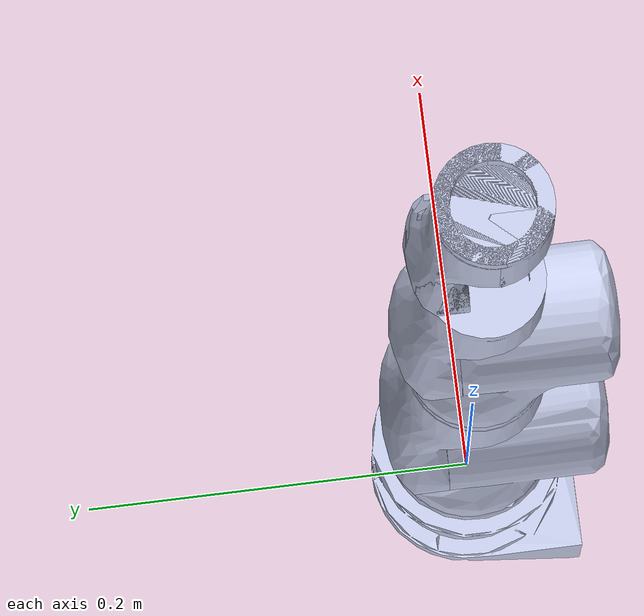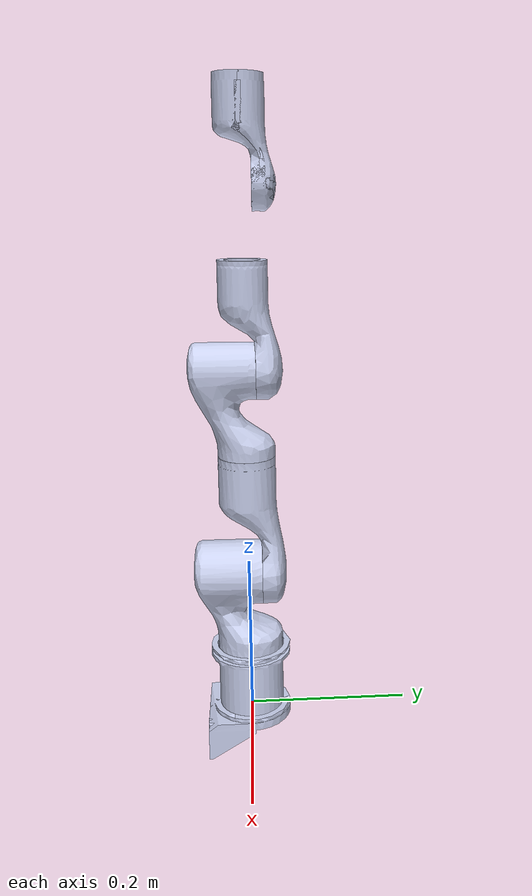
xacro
<?xml version="1.0"?>
<robot name="rm75_b_v_left" xmlns:xacro="http://www.ros.org/wiki/xacro">
  <!-- Define constants -->
  <xacro:property name="mesh_path" value="file://$(find dual_rm_75b_description)/meshes/" />
  <!-- Macro for visual and collision elements -->
  <xacro:macro name="visual_collision" params="mesh">
    <visual>
      <origin xyz="0 0 0" rpy="0 0 0" />
      <geometry>
        <mesh filename="${mesh_path}${mesh}" />
      </geometry>
      <material name="">
        <color rgba="0.79216 0.81961 0.93333 1" />
      </material>
    </visual>
    <collision>
      <origin xyz="0 0 0" rpy="0 0 0" />
      <geometry>
        <mesh filename="${mesh_path}${mesh}" />
      </geometry>
    </collision>
  </xacro:macro>
  <link
    name="l_base_link1">
    <inertial>
      <origin
        xyz="-3.58E-05 -0.0056915 0.024464"
        rpy="0 0 0" />
      <mass
        value="0.23441" />
      <inertia
        ixx="0.00027369"
        ixy="6.5702E-08"
        ixz="2.7812E-09"
        iyy="0.000264"
        iyz="-1.6355E-06"
        izz="0.00036679" />
    </inertial>
    <xacro:visual_collision mesh="l_base_link1.STL" />
  </link>
  <link
    name="l_link1">
    <inertial>
      <origin
        xyz="2.9692E-07 0.025188 -0.021107"
        rpy="0 0 0" />
      <mass
        value="0.59353" />
      <inertia
        ixx="0.0012661"
        ixy="-2.1134E-09"
        ixz="-5.3685E-09"
        iyy="0.00056131"
        iyz="-0.00021118"
        izz="0.0011816" />
    </inertial>
    <xacro:visual_collision mesh="l_link1.STL" />
  </link>
  <link
    name="l_link2">
    <inertial>
      <origin
        xyz="3.7598E-07 0.011077 0.07613"
        rpy="0 0 0" />
      <mass
        value="0.43285" />
      <inertia
        ixx="0.0012584"
        ixy="7.8046E-10"
        ixz="3.3823E-09"
        iyy="0.0012224"
        iyz="0.00027899"
        izz="0.00031747" />
    </inertial>
    <xacro:visual_collision mesh="l_link2.STL" />
  </link>
  <link
    name="l_link3">
    <inertial>
      <origin
        xyz="1.1341E-07 0.027347 -0.023544"
        rpy="0 0 0" />
      <mass
        value="0.43132" />
      <inertia
        ixx="0.00079434"
        ixy="1.4278E-09"
        ixz="2.8253E-09"
        iyy="0.00031506"
        iyz="-0.00014262"
        izz="0.00073038" />
    </inertial>
    <xacro:visual_collision mesh="l_link3.STL" />
  </link>
  <link
    name="l_link4">
    <inertial>
      <origin
        xyz="4.7315E-06 0.010268 0.059592"
        rpy="0 0 0" />
      <mass
        value="0.28963" />
      <inertia
        ixx="0.00063737"
        ixy="-3.5036E-08"
        ixz="6.2577E-08"
        iyy="0.00061418"
        iyz="0.00014461"
        izz="0.00015649" />
    </inertial>
    <xacro:visual_collision mesh="l_link4.STL" />
  </link>
  <link
    name="l_link5">
    <inertial>
      <origin
        xyz="2.93E-07 0.02154 -0.018042"
        rpy="0 0 0" />
      <mass
        value="0.23942" />
      <inertia
        ixx="0.00028595"
        ixy="-1.4023E-09"
        ixz="-2.3584E-09"
        iyy="0.0001199"
        iyz="-4.424E-05"
        izz="0.00026273" />
    </inertial>
    <xacro:visual_collision mesh="l_link5.STL" />
  </link>
  <link
    name="l_link6">
    <inertial>
      <origin
        xyz="4.2445E-06 0.007067 0.059381"
        rpy="0 0 0" />
      <mass
        value="0.21879" />
      <inertia
        ixx="0.00035053"
        ixy="-1.6558E-08"
        ixz="2.8592E-08"
        iyy="0.00033447"
        iyz="7.824E-05"
        izz="0.00010492" />
    </inertial>
    <xacro:visual_collision mesh="l_link6.STL" />
  </link>

  <joint
    name="l_joint1"
    type="revolute">
    <origin
      xyz="0 0 0.187"
      rpy="-1.5708 0 0" />
    <parent
      link="l_base_link1" />
    <child
      link="l_link1" />
    <axis
      xyz="0 -1 0" />
    <limit
      lower="-3.11"
      upper="3.11"
      effort="60"
      velocity="3.14" />
  </joint>
  <joint
    name="l_joint2"
    type="revolute">
    <origin
      xyz="0 0 0"
      rpy="1.5708 0 0" />
    <parent
      link="l_link1" />
    <child
      link="l_link2" />
    <axis
      xyz="0 1 0" />
    <limit
      lower="-2.27"
      upper="2.27"
      effort="60"
      velocity="3.14" />
  </joint>
  <joint
    name="l_joint3"
    type="revolute">
    <origin
      xyz="0 0 0.256"
      rpy="-1.5708 0 0" />
    <parent
      link="l_link2" />
    <child
      link="l_link3" />
    <axis
      xyz="0 1 0" />
    <limit
      lower="-3.11"
      upper="3.11"
      effort="30"
      velocity="3.925" />
  </joint>
  <joint
    name="l_joint4"
    type="revolute">
    <origin
      xyz="0 0 0"
      rpy="1.5708 0 0" />
    <parent
      link="l_link3" />
    <child
      link="l_link4" />
    <axis
      xyz="0 1 0" />
    <limit
      lower="-2.36"
      upper="2.36"
      effort="30"
      velocity="3.925" />
  </joint>
  <joint
    name="l_joint5"
    type="revolute">
    <origin
      xyz="0 -0.00030001 0.21"
      rpy="-1.5708 0 0" />
    <parent
      link="l_link4" />
    <child
      link="l_link5" />
    <axis
      xyz="0 1 0" />
    <limit
      lower="-3.11"
      upper="3.11"
      effort="10"
      velocity="3.925" />
  </joint>
  <joint
    name="l_joint6"
    type="revolute">
    <origin
      xyz="0 0 0"
      rpy="1.5708 0 0" />
    <parent
      link="l_link5" />
    <child
      link="l_link6" />
    <axis
      xyz="0 -1 0" />
    <limit
      lower="-2.23"
      upper="2.23"
      effort="10"
      velocity="3.925" />
  </joint>
</robot>
